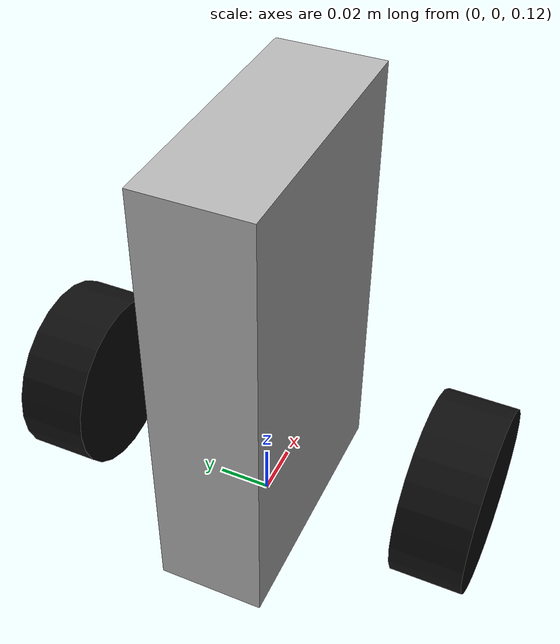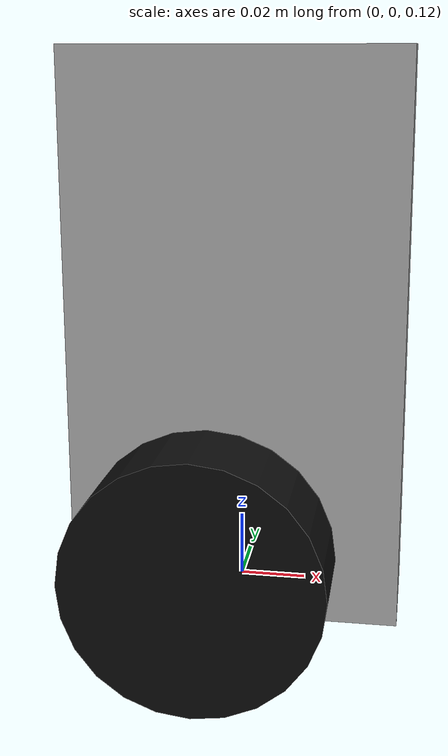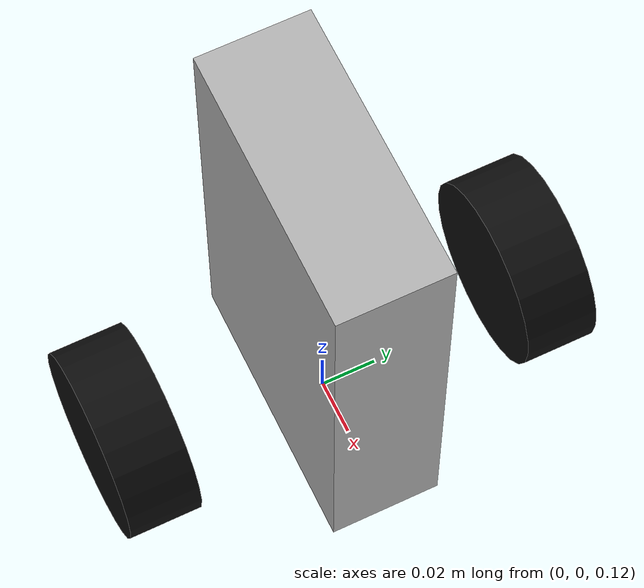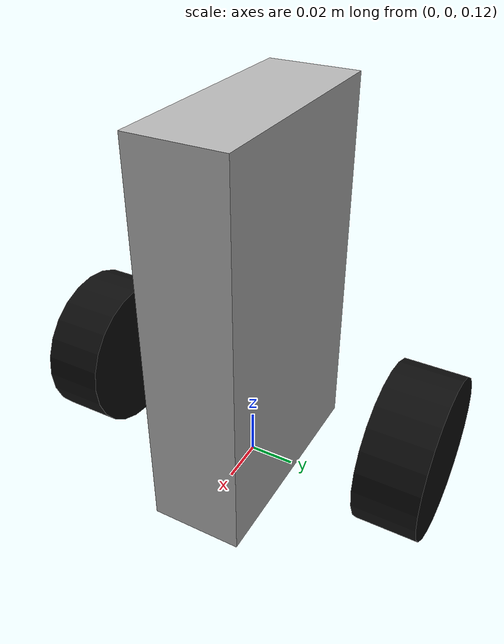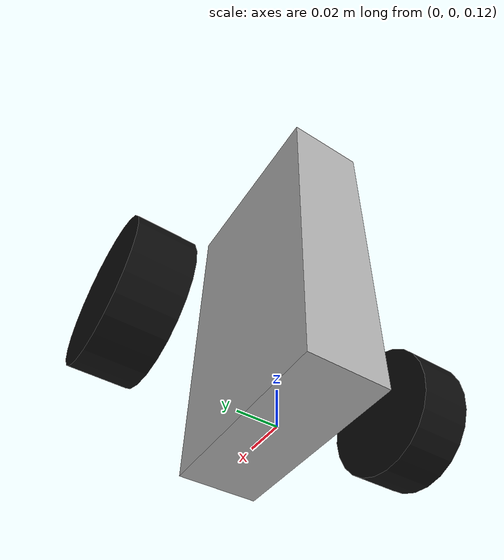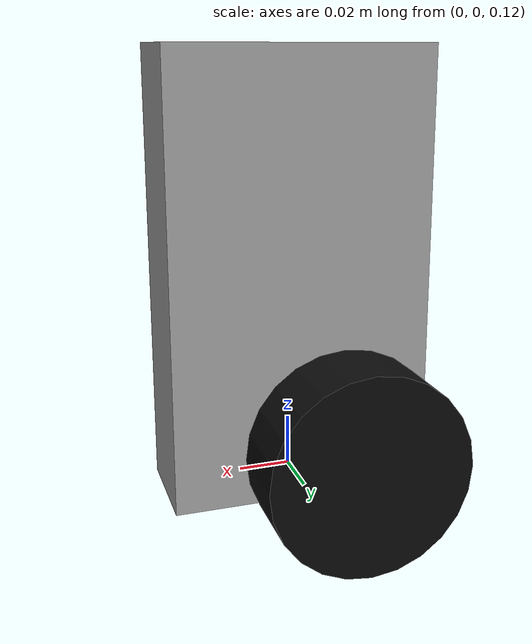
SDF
<?xml version="1.0" ?>
<sdf version="1.9">
  <model name="balance_robot">
    <pose>0 0 0.12 0 0 0</pose>
    <static>false</static>

    <!-- Body -->
    <link name="base_link">
      <pose>0 0 0.08 0 0 0</pose>

      <inertial>
        <mass>0.514</mass>
        <inertia>
          <ixx>0.001311</ixx>
          <iyy>0.0012568</iyy>
          <izz>0.000487</izz>
          <ixy>0</ixy>
          <ixz>0</ixz>
          <iyz>0</iyz>
        </inertia>
      </inertial>

      <collision name="base_collision">
        <geometry>
          <box>
            <size>0.10 0.04 0.17</size>
          </box>
        </geometry>
      </collision>

      <visual name="base_visual">
        <geometry>
          <box>
            <size>0.10 0.04 0.17</size>
          </box>
        </geometry>
        <material>
          <diffuse>0.7 0.7 0.7 1</diffuse>
        </material>
      </visual>

      <sensor name="imu_sensor" type="imu">
        <always_on>true</always_on>
        <update_rate>200</update_rate>
        <topic>imu</topic>
      </sensor>
    </link>

    <!-- Left wheel -->
    <link name="left_wheel">
      <pose>0 0.074 0.034 1.57079632679 0 0</pose>

      <inertial>
        <mass>0.032</mass>
        <inertia>
          <ixx>0.000023</ixx>
          <iyy>0.000013</iyy>
          <izz>0.000013</izz>
          <ixy>0</ixy>
          <ixz>0</ixz>
          <iyz>0</iyz>
        </inertia>
      </inertial>

      <collision name="left_wheel_collision">
        <geometry>
          <cylinder>
            <radius>0.034</radius>
            <length>0.026</length>
          </cylinder>
        </geometry>
        <surface>
          <friction>
            <ode>
              <mu>0.8</mu>
              <mu2>0.8</mu2>
            </ode>
          </friction>
        </surface>
      </collision>

      <visual name="left_wheel_visual">
        <geometry>
          <cylinder>
            <radius>0.034</radius>
            <length>0.026</length>
          </cylinder>
        </geometry>
        <material>
          <diffuse>0.05 0.05 0.05 1</diffuse>
        </material>
      </visual>
    </link>

    <!-- Right wheel -->
    <link name="right_wheel">
      <pose>0 -0.074 0.034 1.57079632679 0 0</pose>

      <inertial>
        <mass>0.032</mass>
        <inertia>
          <ixx>0.000023</ixx>
          <iyy>0.000013</iyy>
          <izz>0.000013</izz>
          <ixy>0</ixy>
          <ixz>0</ixz>
          <iyz>0</iyz>
        </inertia>
      </inertial>

      <collision name="right_wheel_collision">
        <geometry>
          <cylinder>
            <radius>0.034</radius>
            <length>0.026</length>
          </cylinder>
        </geometry>
        <surface>
          <friction>
            <ode>
              <mu>0.8</mu>
              <mu2>0.8</mu2>
            </ode>
          </friction>
        </surface>
      </collision>

      <visual name="right_wheel_visual">
        <geometry>
          <cylinder>
            <radius>0.034</radius>
            <length>0.026</length>
          </cylinder>
        </geometry>
        <material>
          <diffuse>0.05 0.05 0.05 1</diffuse>
        </material>
      </visual>
    </link>

    <!-- Wheel joints -->
    <joint name="left_wheel_joint" type="revolute">
      <parent>base_link</parent>
      <child>left_wheel</child>
      <pose>0 0.074 0.034 0 0 0</pose>
      <axis>
        <xyz>0 1 0</xyz>
        <limit>
          <lower>-1e16</lower>
          <upper>1e16</upper>
        </limit>
      </axis>
    </joint>

    <joint name="right_wheel_joint" type="revolute">
      <parent>base_link</parent>
      <child>right_wheel</child>
      <pose>0 -0.074 0.034 0 0 0</pose>
      <axis>
        <xyz>0 1 0</xyz>
        <limit>
          <lower>-1e16</lower>
          <upper>1e16</upper>
        </limit>
      </axis>
    </joint>

    <plugin
      filename="ignition-gazebo-joint-state-publisher-system"
      name="ignition::gazebo::systems::JointStatePublisher">
      <joint_name>left_wheel_joint</joint_name>
      <joint_name>right_wheel_joint</joint_name>
    </plugin>

    <plugin
      filename="ignition-gazebo-imu-system"
      name="ignition::gazebo::systems::Imu">
    </plugin>

  </model>
</sdf>
